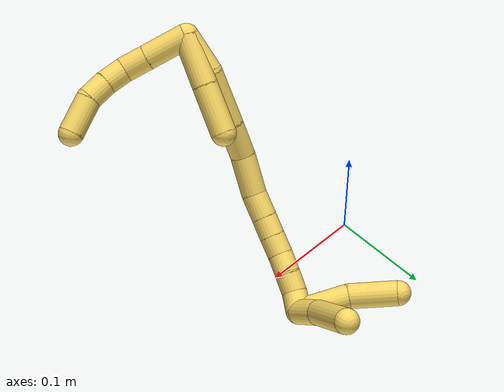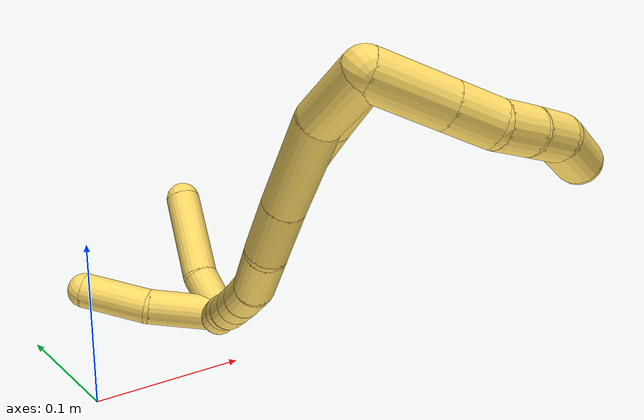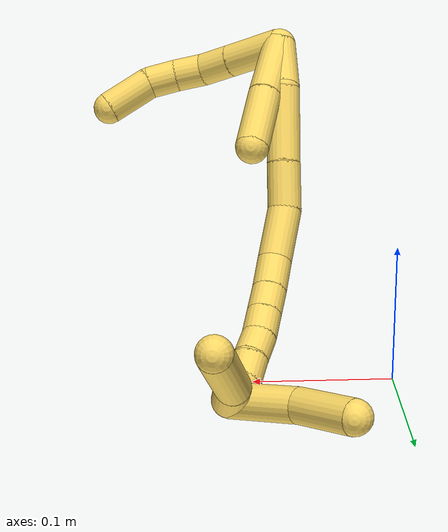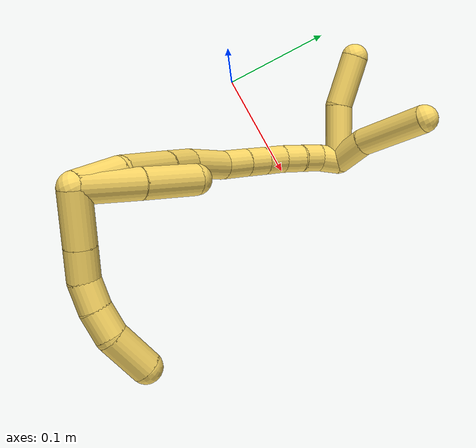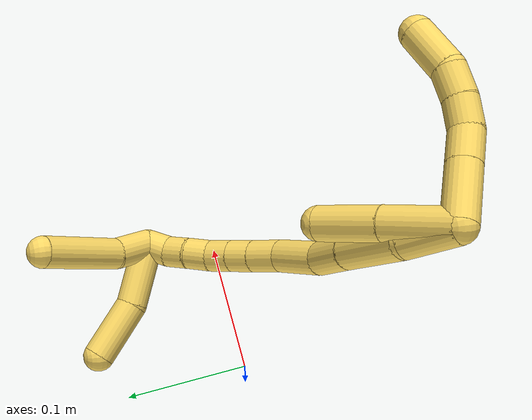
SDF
<sdf version="1.7">
 <world name="default">
  <model name="5">
   <static>0</static>
   <link name="5">
    <collision name="collision-cylinder-e_1_2_8">
     <pose>0.016194 -0.011449 -0.008226 2.19383 0.854482 1.452</pose>
     <geometry><cylinder><radius>0.0125</radius><length>0.04294</length></cylinder></geometry>
     <surface>
      <friction><ode><mu>1.16</mu><mu2>1.16</mu2><slip1>0</slip1><slip2>0</slip2></ode></friction>
      <contact><ode><kp>1e+06</kp><kd>1</kd><max_vel>0</max_vel><min_depth>0.001</min_depth></ode></contact>
     </surface>
    </collision>
    <visual name="visual-cylinder-e_1_2_8">
     <pose>0.016194 -0.011449 -0.008226 2.19383 0.854482 1.452</pose>
     <geometry><cylinder><radius>0.0125</radius><length>0.04294</length></cylinder></geometry>
     <material><ambient>1 0.858824 0.4 1</ambient></material>
    </visual>
    <collision name="collision-cylinder-e_2_8_9">
     <pose>0.041809 -0.029557 -0.021241 2.19423 0.854442 1.45244</pose>
     <geometry><cylinder><radius>0.0125</radius><length>0.024984</length></cylinder></geometry>
     <surface>
      <friction><ode><mu>1.16</mu><mu2>1.16</mu2><slip1>0</slip1><slip2>0</slip2></ode></friction>
      <contact><ode><kp>1e+06</kp><kd>1</kd><max_vel>0</max_vel><min_depth>0.001</min_depth></ode></contact>
     </surface>
    </collision>
    <visual name="visual-cylinder-e_2_8_9">
     <pose>0.041809 -0.029557 -0.021241 2.19423 0.854442 1.45244</pose>
     <geometry><cylinder><radius>0.0125</radius><length>0.024984</length></cylinder></geometry>
     <material><ambient>1 0.858824 0.4 1</ambient></material>
    </visual>
    <collision name="collision-cylinder-e_3_9_10">
     <pose>0.05988 -0.043163 -0.026928 1.69938 0.890167 0.994368</pose>
     <geometry><cylinder><radius>0.0125</radius><length>0.022259</length></cylinder></geometry>
     <surface>
      <friction><ode><mu>1.16</mu><mu2>1.16</mu2><slip1>0</slip1><slip2>0</slip2></ode></friction>
      <contact><ode><kp>1e+06</kp><kd>1</kd><max_vel>0</max_vel><min_depth>0.001</min_depth></ode></contact>
     </surface>
    </collision>
    <visual name="visual-cylinder-e_3_9_10">
     <pose>0.05988 -0.043163 -0.026928 1.69938 0.890167 0.994368</pose>
     <geometry><cylinder><radius>0.0125</radius><length>0.022259</length></cylinder></geometry>
     <material><ambient>1 0.858824 0.4 1</ambient></material>
    </visual>
    <collision name="collision-cylinder-e_4_10_11">
     <pose>0.077807 -0.056573 -0.027059 1.45268 0.958946 0.86539</pose>
     <geometry><cylinder><radius>0.0125</radius><length>0.022665</length></cylinder></geometry>
     <surface>
      <friction><ode><mu>1.16</mu><mu2>1.16</mu2><slip1>0</slip1><slip2>0</slip2></ode></friction>
      <contact><ode><kp>1e+06</kp><kd>1</kd><max_vel>0</max_vel><min_depth>0.001</min_depth></ode></contact>
     </surface>
    </collision>
    <visual name="visual-cylinder-e_4_10_11">
     <pose>0.077807 -0.056573 -0.027059 1.45268 0.958946 0.86539</pose>
     <geometry><cylinder><radius>0.0125</radius><length>0.022665</length></cylinder></geometry>
     <material><ambient>1 0.858824 0.4 1</ambient></material>
    </visual>
    <collision name="collision-cylinder-e_5_11_6">
     <pose>0.104587 -0.06818 -0.0228 0.974312 1.22951 0.7158</pose>
     <geometry><cylinder><radius>0.0125</radius><length>0.037151</length></cylinder></geometry>
     <surface>
      <friction><ode><mu>1.16</mu><mu2>1.16</mu2><slip1>0</slip1><slip2>0</slip2></ode></friction>
      <contact><ode><kp>1e+06</kp><kd>1</kd><max_vel>0</max_vel><min_depth>0.001</min_depth></ode></contact>
     </surface>
    </collision>
    <visual name="visual-cylinder-e_5_11_6">
     <pose>0.104587 -0.06818 -0.0228 0.974312 1.22951 0.7158</pose>
     <geometry><cylinder><radius>0.0125</radius><length>0.037151</length></cylinder></geometry>
     <material><ambient>1 0.858824 0.4 1</ambient></material>
    </visual>
    <collision name="collision-cylinder-e_1_2_12">
     <pose>0.018429 0.0096 0.015051 -0.567755 0.801301 -0.245907</pose>
     <geometry><cylinder><radius>0.0125</radius><length>0.051315</length></cylinder></geometry>
     <surface>
      <friction><ode><mu>1.16</mu><mu2>1.16</mu2><slip1>0</slip1><slip2>0</slip2></ode></friction>
      <contact><ode><kp>1e+06</kp><kd>1</kd><max_vel>0</max_vel><min_depth>0.001</min_depth></ode></contact>
     </surface>
    </collision>
    <visual name="visual-cylinder-e_1_2_12">
     <pose>0.018429 0.0096 0.015051 -0.567755 0.801301 -0.245907</pose>
     <geometry><cylinder><radius>0.0125</radius><length>0.051315</length></cylinder></geometry>
     <material><ambient>1 0.858824 0.4 1</ambient></material>
    </visual>
    <collision name="collision-cylinder-e_2_12_5">
     <pose>0.054515 0.02923 0.043524 -0.641784 0.811564 -0.28368</pose>
     <geometry><cylinder><radius>0.0125</radius><length>0.048685</length></cylinder></geometry>
     <surface>
      <friction><ode><mu>1.16</mu><mu2>1.16</mu2><slip1>0</slip1><slip2>0</slip2></ode></friction>
      <contact><ode><kp>1e+06</kp><kd>1</kd><max_vel>0</max_vel><min_depth>0.001</min_depth></ode></contact>
     </surface>
    </collision>
    <visual name="visual-cylinder-e_2_12_5">
     <pose>0.054515 0.02923 0.043524 -0.641784 0.811564 -0.28368</pose>
     <geometry><cylinder><radius>0.0125</radius><length>0.048685</length></cylinder></geometry>
     <material><ambient>1 0.858824 0.4 1</ambient></material>
    </visual>
    <collision name="collision-cylinder-e_1_2_13">
     <pose>0.012182 0.012935 0.010249 -0.900747 0.635878 -0.315607</pose>
     <geometry><cylinder><radius>0.0125</radius><length>0.041024</length></cylinder></geometry>
     <surface>
      <friction><ode><mu>1.16</mu><mu2>1.16</mu2><slip1>0</slip1><slip2>0</slip2></ode></friction>
      <contact><ode><kp>1e+06</kp><kd>1</kd><max_vel>0</max_vel><min_depth>0.001</min_depth></ode></contact>
     </surface>
    </collision>
    <visual name="visual-cylinder-e_1_2_13">
     <pose>0.012182 0.012935 0.010249 -0.900747 0.635878 -0.315607</pose>
     <geometry><cylinder><radius>0.0125</radius><length>0.041024</length></cylinder></geometry>
     <material><ambient>1 0.858824 0.4 1</ambient></material>
    </visual>
    <collision name="collision-cylinder-e_2_13_14">
     <pose>0.045607 0.044458 0.026685 -1.24946 0.825834 -0.611968</pose>
     <geometry><cylinder><radius>0.0125</radius><length>0.057796</length></cylinder></geometry>
     <surface>
      <friction><ode><mu>1.16</mu><mu2>1.16</mu2><slip1>0</slip1><slip2>0</slip2></ode></friction>
      <contact><ode><kp>1e+06</kp><kd>1</kd><max_vel>0</max_vel><min_depth>0.001</min_depth></ode></contact>
     </surface>
    </collision>
    <visual name="visual-cylinder-e_2_13_14">
     <pose>0.045607 0.044458 0.026685 -1.24946 0.825834 -0.611968</pose>
     <geometry><cylinder><radius>0.0125</radius><length>0.057796</length></cylinder></geometry>
     <material><ambient>1 0.858824 0.4 1</ambient></material>
    </visual>
    <collision name="collision-cylinder-e_3_14_15">
     <pose>0.079763 0.074596 0.035756 -1.32615 0.826047 -0.659559</pose>
     <geometry><cylinder><radius>0.0125</radius><length>0.035125</length></cylinder></geometry>
     <surface>
      <friction><ode><mu>1.16</mu><mu2>1.16</mu2><slip1>0</slip1><slip2>0</slip2></ode></friction>
      <contact><ode><kp>1e+06</kp><kd>1</kd><max_vel>0</max_vel><min_depth>0.001</min_depth></ode></contact>
     </surface>
    </collision>
    <visual name="visual-cylinder-e_3_14_15">
     <pose>0.079763 0.074596 0.035756 -1.32615 0.826047 -0.659559</pose>
     <geometry><cylinder><radius>0.0125</radius><length>0.035125</length></cylinder></geometry>
     <material><ambient>1 0.858824 0.4 1</ambient></material>
    </visual>
    <collision name="collision-cylinder-e_4_15_16">
     <pose>0.108924 0.095602 0.046247 -0.893307 0.92922 -0.471173</pose>
     <geometry><cylinder><radius>0.0125</radius><length>0.04056</length></cylinder></geometry>
     <surface>
      <friction><ode><mu>1.16</mu><mu2>1.16</mu2><slip1>0</slip1><slip2>0</slip2></ode></friction>
      <contact><ode><kp>1e+06</kp><kd>1</kd><max_vel>0</max_vel><min_depth>0.001</min_depth></ode></contact>
     </surface>
    </collision>
    <visual name="visual-cylinder-e_4_15_16">
     <pose>0.108924 0.095602 0.046247 -0.893307 0.92922 -0.471173</pose>
     <geometry><cylinder><radius>0.0125</radius><length>0.04056</length></cylinder></geometry>
     <material><ambient>1 0.858824 0.4 1</ambient></material>
    </visual>
    <collision name="collision-cylinder-e_5_16_17">
     <pose>0.134061 0.110589 0.061008 -0.658158 0.776857 -0.277695</pose>
     <geometry><cylinder><radius>0.0125</radius><length>0.025361</length></cylinder></geometry>
     <surface>
      <friction><ode><mu>1.16</mu><mu2>1.16</mu2><slip1>0</slip1><slip2>0</slip2></ode></friction>
      <contact><ode><kp>1e+06</kp><kd>1</kd><max_vel>0</max_vel><min_depth>0.001</min_depth></ode></contact>
     </surface>
    </collision>
    <visual name="visual-cylinder-e_5_16_17">
     <pose>0.134061 0.110589 0.061008 -0.658158 0.776857 -0.277695</pose>
     <geometry><cylinder><radius>0.0125</radius><length>0.025361</length></cylinder></geometry>
     <material><ambient>1 0.858824 0.4 1</ambient></material>
    </visual>
    <collision name="collision-cylinder-e_6_17_18">
     <pose>0.149917 0.12007 0.074254 -0.57526 0.764792 -0.236852</pose>
     <geometry><cylinder><radius>0.0125</radius><length>0.020124</length></cylinder></geometry>
     <surface>
      <friction><ode><mu>1.16</mu><mu2>1.16</mu2><slip1>0</slip1><slip2>0</slip2></ode></friction>
      <contact><ode><kp>1e+06</kp><kd>1</kd><max_vel>0</max_vel><min_depth>0.001</min_depth></ode></contact>
     </surface>
    </collision>
    <visual name="visual-cylinder-e_6_17_18">
     <pose>0.149917 0.12007 0.074254 -0.57526 0.764792 -0.236852</pose>
     <geometry><cylinder><radius>0.0125</radius><length>0.020124</length></cylinder></geometry>
     <material><ambient>1 0.858824 0.4 1</ambient></material>
    </visual>
    <collision name="collision-cylinder-e_7_18_19">
     <pose>0.163701 0.12798 0.086503 -0.571594 0.749786 -0.230232</pose>
     <geometry><cylinder><radius>0.0125</radius><length>0.020007</length></cylinder></geometry>
     <surface>
      <friction><ode><mu>1.16</mu><mu2>1.16</mu2><slip1>0</slip1><slip2>0</slip2></ode></friction>
      <contact><ode><kp>1e+06</kp><kd>1</kd><max_vel>0</max_vel><min_depth>0.001</min_depth></ode></contact>
     </surface>
    </collision>
    <visual name="visual-cylinder-e_7_18_19">
     <pose>0.163701 0.12798 0.086503 -0.571594 0.749786 -0.230232</pose>
     <geometry><cylinder><radius>0.0125</radius><length>0.020007</length></cylinder></geometry>
     <material><ambient>1 0.858824 0.4 1</ambient></material>
    </visual>
    <collision name="collision-cylinder-e_8_19_20">
     <pose>0.177198 0.134483 0.099656 -0.348474 0.731301 -0.134583</pose>
     <geometry><cylinder><radius>0.0125</radius><length>0.020002</length></cylinder></geometry>
     <surface>
      <friction><ode><mu>1.16</mu><mu2>1.16</mu2><slip1>0</slip1><slip2>0</slip2></ode></friction>
      <contact><ode><kp>1e+06</kp><kd>1</kd><max_vel>0</max_vel><min_depth>0.001</min_depth></ode></contact>
     </surface>
    </collision>
    <visual name="visual-cylinder-e_8_19_20">
     <pose>0.177198 0.134483 0.099656 -0.348474 0.731301 -0.134583</pose>
     <geometry><cylinder><radius>0.0125</radius><length>0.020002</length></cylinder></geometry>
     <material><ambient>1 0.858824 0.4 1</ambient></material>
    </visual>
    <collision name="collision-cylinder-e_9_20_21">
     <pose>0.191037 0.140376 0.112776 -0.500847 0.798063 -0.214881</pose>
     <geometry><cylinder><radius>0.0125</radius><length>0.02</length></cylinder></geometry>
     <surface>
      <friction><ode><mu>1.16</mu><mu2>1.16</mu2><slip1>0</slip1><slip2>0</slip2></ode></friction>
      <contact><ode><kp>1e+06</kp><kd>1</kd><max_vel>0</max_vel><min_depth>0.001</min_depth></ode></contact>
     </surface>
    </collision>
    <visual name="visual-cylinder-e_9_20_21">
     <pose>0.191037 0.140376 0.112776 -0.500847 0.798063 -0.214881</pose>
     <geometry><cylinder><radius>0.0125</radius><length>0.02</length></cylinder></geometry>
     <material><ambient>1 0.858824 0.4 1</ambient></material>
    </visual>
    <collision name="collision-cylinder-e_10_21_1">
     <pose>0.205051 0.143964 0.126177 -0.032427 0.755252 -0.012864</pose>
     <geometry><cylinder><radius>0.0125</radius><length>0.02</length></cylinder></geometry>
     <surface>
      <friction><ode><mu>1.16</mu><mu2>1.16</mu2><slip1>0</slip1><slip2>0</slip2></ode></friction>
      <contact><ode><kp>1e+06</kp><kd>1</kd><max_vel>0</max_vel><min_depth>0.001</min_depth></ode></contact>
     </surface>
    </collision>
    <visual name="visual-cylinder-e_10_21_1">
     <pose>0.205051 0.143964 0.126177 -0.032427 0.755252 -0.012864</pose>
     <geometry><cylinder><radius>0.0125</radius><length>0.02</length></cylinder></geometry>
     <material><ambient>1 0.858824 0.4 1</ambient></material>
    </visual>
    <collision name="collision-cylinder-e_1_1_22">
     <pose>0.196672 0.162463 0.14344 -1.07041 -0.631836 0.38287</pose>
     <geometry><cylinder><radius>0.0125</radius><length>0.051587</length></cylinder></geometry>
     <surface>
      <friction><ode><mu>1.16</mu><mu2>1.16</mu2><slip1>0</slip1><slip2>0</slip2></ode></friction>
      <contact><ode><kp>1e+06</kp><kd>1</kd><max_vel>0</max_vel><min_depth>0.001</min_depth></ode></contact>
     </surface>
    </collision>
    <visual name="visual-cylinder-e_1_1_22">
     <pose>0.196672 0.162463 0.14344 -1.07041 -0.631836 0.38287</pose>
     <geometry><cylinder><radius>0.0125</radius><length>0.051587</length></cylinder></geometry>
     <material><ambient>1 0.858824 0.4 1</ambient></material>
    </visual>
    <collision name="collision-cylinder-e_2_22_4">
     <pose>0.170678 0.195809 0.169003 -0.769296 -0.46061 0.189262</pose>
     <geometry><cylinder><radius>0.0125</radius><length>0.048413</length></cylinder></geometry>
     <surface>
      <friction><ode><mu>1.16</mu><mu2>1.16</mu2><slip1>0</slip1><slip2>0</slip2></ode></friction>
      <contact><ode><kp>1e+06</kp><kd>1</kd><max_vel>0</max_vel><min_depth>0.001</min_depth></ode></contact>
     </surface>
    </collision>
    <visual name="visual-cylinder-e_2_22_4">
     <pose>0.170678 0.195809 0.169003 -0.769296 -0.46061 0.189262</pose>
     <geometry><cylinder><radius>0.0125</radius><length>0.048413</length></cylinder></geometry>
     <material><ambient>1 0.858824 0.4 1</ambient></material>
    </visual>
    <collision name="collision-cylinder-e_1_1_23">
     <pose>0.205509 0.142175 0.148505 0.133769 -0.398703 -0.027065</pose>
     <geometry><cylinder><radius>0.0125</radius><length>0.032957</length></cylinder></geometry>
     <surface>
      <friction><ode><mu>1.16</mu><mu2>1.16</mu2><slip1>0</slip1><slip2>0</slip2></ode></friction>
      <contact><ode><kp>1e+06</kp><kd>1</kd><max_vel>0</max_vel><min_depth>0.001</min_depth></ode></contact>
     </surface>
    </collision>
    <visual name="visual-cylinder-e_1_1_23">
     <pose>0.205509 0.142175 0.148505 0.133769 -0.398703 -0.027065</pose>
     <geometry><cylinder><radius>0.0125</radius><length>0.032957</length></cylinder></geometry>
     <material><ambient>1 0.858824 0.4 1</ambient></material>
    </visual>
    <collision name="collision-cylinder-e_2_23_3">
     <pose>0.190529 0.128843 0.193923 0.356424 -0.258926 -0.046892</pose>
     <geometry><cylinder><radius>0.0125</radius><length>0.067043</length></cylinder></geometry>
     <surface>
      <friction><ode><mu>1.16</mu><mu2>1.16</mu2><slip1>0</slip1><slip2>0</slip2></ode></friction>
      <contact><ode><kp>1e+06</kp><kd>1</kd><max_vel>0</max_vel><min_depth>0.001</min_depth></ode></contact>
     </surface>
    </collision>
    <visual name="visual-cylinder-e_2_23_3">
     <pose>0.190529 0.128843 0.193923 0.356424 -0.258926 -0.046892</pose>
     <geometry><cylinder><radius>0.0125</radius><length>0.067043</length></cylinder></geometry>
     <material><ambient>1 0.858824 0.4 1</ambient></material>
    </visual>
    <collision name="collision-sphere-3">
     <pose>0.181946 0.117537 0.22429 0 -0 0</pose>
     <geometry><sphere><radius>0.0125</radius></sphere></geometry>
     <surface>
      <friction><ode><mu>1.16</mu><mu2>1.16</mu2><slip1>0</slip1><slip2>0</slip2></ode></friction>
      <contact><ode><kp>1e+06</kp><kd>1</kd><max_vel>0</max_vel><min_depth>0.001</min_depth></ode></contact>
     </surface>
    </collision>
    <visual name="visual-sphere-3">
     <pose>0.181946 0.117537 0.22429 0 -0 0</pose>
     <geometry><sphere><radius>0.0125</radius></sphere></geometry>
     <material><ambient>1 0.858824 0.4 1</ambient></material>
    </visual>
    <collision name="collision-sphere-23">
     <pose>0.199111 0.14015 0.163555 0 -0 0</pose>
     <geometry><sphere><radius>0.0125</radius></sphere></geometry>
     <surface>
      <friction><ode><mu>1.16</mu><mu2>1.16</mu2><slip1>0</slip1><slip2>0</slip2></ode></friction>
      <contact><ode><kp>1e+06</kp><kd>1</kd><max_vel>0</max_vel><min_depth>0.001</min_depth></ode></contact>
     </surface>
    </collision>
    <visual name="visual-sphere-23">
     <pose>0.199111 0.14015 0.163555 0 -0 0</pose>
     <geometry><sphere><radius>0.0125</radius></sphere></geometry>
     <material><ambient>1 0.858824 0.4 1</ambient></material>
    </visual>
    <collision name="collision-sphere-4">
     <pose>0.159918 0.210892 0.184581 0 -0 0</pose>
     <geometry><sphere><radius>0.0125</radius></sphere></geometry>
     <surface>
      <friction><ode><mu>1.16</mu><mu2>1.16</mu2><slip1>0</slip1><slip2>0</slip2></ode></friction>
      <contact><ode><kp>1e+06</kp><kd>1</kd><max_vel>0</max_vel><min_depth>0.001</min_depth></ode></contact>
     </surface>
    </collision>
    <visual name="visual-sphere-4">
     <pose>0.159918 0.210892 0.184581 0 -0 0</pose>
     <geometry><sphere><radius>0.0125</radius></sphere></geometry>
     <material><ambient>1 0.858824 0.4 1</ambient></material>
    </visual>
    <collision name="collision-sphere-22">
     <pose>0.181438 0.180725 0.153426 0 -0 0</pose>
     <geometry><sphere><radius>0.0125</radius></sphere></geometry>
     <surface>
      <friction><ode><mu>1.16</mu><mu2>1.16</mu2><slip1>0</slip1><slip2>0</slip2></ode></friction>
      <contact><ode><kp>1e+06</kp><kd>1</kd><max_vel>0</max_vel><min_depth>0.001</min_depth></ode></contact>
     </surface>
    </collision>
    <visual name="visual-sphere-22">
     <pose>0.181438 0.180725 0.153426 0 -0 0</pose>
     <geometry><sphere><radius>0.0125</radius></sphere></geometry>
     <material><ambient>1 0.858824 0.4 1</ambient></material>
    </visual>
    <collision name="collision-sphere-1">
     <pose>0.211906 0.144201 0.133454 0 -0 0</pose>
     <geometry><sphere><radius>0.0125</radius></sphere></geometry>
     <surface>
      <friction><ode><mu>1.16</mu><mu2>1.16</mu2><slip1>0</slip1><slip2>0</slip2></ode></friction>
      <contact><ode><kp>1e+06</kp><kd>1</kd><max_vel>0</max_vel><min_depth>0.001</min_depth></ode></contact>
     </surface>
    </collision>
    <visual name="visual-sphere-1">
     <pose>0.211906 0.144201 0.133454 0 -0 0</pose>
     <geometry><sphere><radius>0.0125</radius></sphere></geometry>
     <material><ambient>1 0.858824 0.4 1</ambient></material>
    </visual>
    <collision name="collision-sphere-21">
     <pose>0.198197 0.143728 0.1189 0 -0 0</pose>
     <geometry><sphere><radius>0.0125</radius></sphere></geometry>
     <surface>
      <friction><ode><mu>1.16</mu><mu2>1.16</mu2><slip1>0</slip1><slip2>0</slip2></ode></friction>
      <contact><ode><kp>1e+06</kp><kd>1</kd><max_vel>0</max_vel><min_depth>0.001</min_depth></ode></contact>
     </surface>
    </collision>
    <visual name="visual-sphere-21">
     <pose>0.198197 0.143728 0.1189 0 -0 0</pose>
     <geometry><sphere><radius>0.0125</radius></sphere></geometry>
     <material><ambient>1 0.858824 0.4 1</ambient></material>
    </visual>
    <collision name="collision-sphere-6">
     <pose>0.122091 -0.073324 -0.019307 0 -0 0</pose>
     <geometry><sphere><radius>0.0125</radius></sphere></geometry>
     <surface>
      <friction><ode><mu>1.16</mu><mu2>1.16</mu2><slip1>0</slip1><slip2>0</slip2></ode></friction>
      <contact><ode><kp>1e+06</kp><kd>1</kd><max_vel>0</max_vel><min_depth>0.001</min_depth></ode></contact>
     </surface>
    </collision>
    <visual name="visual-sphere-6">
     <pose>0.122091 -0.073324 -0.019307 0 -0 0</pose>
     <geometry><sphere><radius>0.0125</radius></sphere></geometry>
     <material><ambient>1 0.858824 0.4 1</ambient></material>
    </visual>
    <collision name="collision-sphere-11">
     <pose>0.087083 -0.063037 -0.026292 0 -0 0</pose>
     <geometry><sphere><radius>0.0125</radius></sphere></geometry>
     <surface>
      <friction><ode><mu>1.16</mu><mu2>1.16</mu2><slip1>0</slip1><slip2>0</slip2></ode></friction>
      <contact><ode><kp>1e+06</kp><kd>1</kd><max_vel>0</max_vel><min_depth>0.001</min_depth></ode></contact>
     </surface>
    </collision>
    <visual name="visual-sphere-11">
     <pose>0.087083 -0.063037 -0.026292 0 -0 0</pose>
     <geometry><sphere><radius>0.0125</radius></sphere></geometry>
     <material><ambient>1 0.858824 0.4 1</ambient></material>
    </visual>
    <collision name="collision-sphere-10">
     <pose>0.06853 -0.050109 -0.027826 0 -0 0</pose>
     <geometry><sphere><radius>0.0125</radius></sphere></geometry>
     <surface>
      <friction><ode><mu>1.16</mu><mu2>1.16</mu2><slip1>0</slip1><slip2>0</slip2></ode></friction>
      <contact><ode><kp>1e+06</kp><kd>1</kd><max_vel>0</max_vel><min_depth>0.001</min_depth></ode></contact>
     </surface>
    </collision>
    <visual name="visual-sphere-10">
     <pose>0.06853 -0.050109 -0.027826 0 -0 0</pose>
     <geometry><sphere><radius>0.0125</radius></sphere></geometry>
     <material><ambient>1 0.858824 0.4 1</ambient></material>
    </visual>
    <collision name="collision-sphere-9">
     <pose>0.05123 -0.036217 -0.02603 0 -0 0</pose>
     <geometry><sphere><radius>0.0125</radius></sphere></geometry>
     <surface>
      <friction><ode><mu>1.16</mu><mu2>1.16</mu2><slip1>0</slip1><slip2>0</slip2></ode></friction>
      <contact><ode><kp>1e+06</kp><kd>1</kd><max_vel>0</max_vel><min_depth>0.001</min_depth></ode></contact>
     </surface>
    </collision>
    <visual name="visual-sphere-9">
     <pose>0.05123 -0.036217 -0.02603 0 -0 0</pose>
     <geometry><sphere><radius>0.0125</radius></sphere></geometry>
     <material><ambient>1 0.858824 0.4 1</ambient></material>
    </visual>
    <collision name="collision-sphere-2">
     <geometry><sphere><radius>0.0125</radius></sphere></geometry>
     <surface>
      <friction><ode><mu>1.16</mu><mu2>1.16</mu2><slip1>0</slip1><slip2>0</slip2></ode></friction>
      <contact><ode><kp>1e+06</kp><kd>1</kd><max_vel>0</max_vel><min_depth>0.001</min_depth></ode></contact>
     </surface>
    </collision>
    <visual name="visual-sphere-2">
     <geometry><sphere><radius>0.0125</radius></sphere></geometry>
     <material><ambient>1 0.858824 0.4 1</ambient></material>
    </visual>
    <collision name="collision-sphere-19">
     <pose>0.170519 0.131941 0.09266 0 -0 0</pose>
     <geometry><sphere><radius>0.0125</radius></sphere></geometry>
     <surface>
      <friction><ode><mu>1.16</mu><mu2>1.16</mu2><slip1>0</slip1><slip2>0</slip2></ode></friction>
      <contact><ode><kp>1e+06</kp><kd>1</kd><max_vel>0</max_vel><min_depth>0.001</min_depth></ode></contact>
     </surface>
    </collision>
    <visual name="visual-sphere-19">
     <pose>0.170519 0.131941 0.09266 0 -0 0</pose>
     <geometry><sphere><radius>0.0125</radius></sphere></geometry>
     <material><ambient>1 0.858824 0.4 1</ambient></material>
    </visual>
    <collision name="collision-sphere-8">
     <pose>0.032387 -0.022898 -0.016452 0 -0 0</pose>
     <geometry><sphere><radius>0.0125</radius></sphere></geometry>
     <surface>
      <friction><ode><mu>1.16</mu><mu2>1.16</mu2><slip1>0</slip1><slip2>0</slip2></ode></friction>
      <contact><ode><kp>1e+06</kp><kd>1</kd><max_vel>0</max_vel><min_depth>0.001</min_depth></ode></contact>
     </surface>
    </collision>
    <visual name="visual-sphere-8">
     <pose>0.032387 -0.022898 -0.016452 0 -0 0</pose>
     <geometry><sphere><radius>0.0125</radius></sphere></geometry>
     <material><ambient>1 0.858824 0.4 1</ambient></material>
    </visual>
    <collision name="collision-sphere-12">
     <pose>0.036858 0.019199 0.030102 0 -0 0</pose>
     <geometry><sphere><radius>0.0125</radius></sphere></geometry>
     <surface>
      <friction><ode><mu>1.16</mu><mu2>1.16</mu2><slip1>0</slip1><slip2>0</slip2></ode></friction>
      <contact><ode><kp>1e+06</kp><kd>1</kd><max_vel>0</max_vel><min_depth>0.001</min_depth></ode></contact>
     </surface>
    </collision>
    <visual name="visual-sphere-12">
     <pose>0.036858 0.019199 0.030102 0 -0 0</pose>
     <geometry><sphere><radius>0.0125</radius></sphere></geometry>
     <material><ambient>1 0.858824 0.4 1</ambient></material>
    </visual>
    <collision name="collision-sphere-5">
     <pose>0.072172 0.039261 0.056947 0 -0 0</pose>
     <geometry><sphere><radius>0.0125</radius></sphere></geometry>
     <surface>
      <friction><ode><mu>1.16</mu><mu2>1.16</mu2><slip1>0</slip1><slip2>0</slip2></ode></friction>
      <contact><ode><kp>1e+06</kp><kd>1</kd><max_vel>0</max_vel><min_depth>0.001</min_depth></ode></contact>
     </surface>
    </collision>
    <visual name="visual-sphere-5">
     <pose>0.072172 0.039261 0.056947 0 -0 0</pose>
     <geometry><sphere><radius>0.0125</radius></sphere></geometry>
     <material><ambient>1 0.858824 0.4 1</ambient></material>
    </visual>
    <collision name="collision-sphere-13">
     <pose>0.024364 0.02587 0.020498 0 -0 0</pose>
     <geometry><sphere><radius>0.0125</radius></sphere></geometry>
     <surface>
      <friction><ode><mu>1.16</mu><mu2>1.16</mu2><slip1>0</slip1><slip2>0</slip2></ode></friction>
      <contact><ode><kp>1e+06</kp><kd>1</kd><max_vel>0</max_vel><min_depth>0.001</min_depth></ode></contact>
     </surface>
    </collision>
    <visual name="visual-sphere-13">
     <pose>0.024364 0.02587 0.020498 0 -0 0</pose>
     <geometry><sphere><radius>0.0125</radius></sphere></geometry>
     <material><ambient>1 0.858824 0.4 1</ambient></material>
    </visual>
    <collision name="collision-sphere-14">
     <pose>0.06685 0.063047 0.032873 0 -0 0</pose>
     <geometry><sphere><radius>0.0125</radius></sphere></geometry>
     <surface>
      <friction><ode><mu>1.16</mu><mu2>1.16</mu2><slip1>0</slip1><slip2>0</slip2></ode></friction>
      <contact><ode><kp>1e+06</kp><kd>1</kd><max_vel>0</max_vel><min_depth>0.001</min_depth></ode></contact>
     </surface>
    </collision>
    <visual name="visual-sphere-14">
     <pose>0.06685 0.063047 0.032873 0 -0 0</pose>
     <geometry><sphere><radius>0.0125</radius></sphere></geometry>
     <material><ambient>1 0.858824 0.4 1</ambient></material>
    </visual>
    <collision name="collision-sphere-15">
     <pose>0.092677 0.086145 0.038639 0 -0 0</pose>
     <geometry><sphere><radius>0.0125</radius></sphere></geometry>
     <surface>
      <friction><ode><mu>1.16</mu><mu2>1.16</mu2><slip1>0</slip1><slip2>0</slip2></ode></friction>
      <contact><ode><kp>1e+06</kp><kd>1</kd><max_vel>0</max_vel><min_depth>0.001</min_depth></ode></contact>
     </surface>
    </collision>
    <visual name="visual-sphere-15">
     <pose>0.092677 0.086145 0.038639 0 -0 0</pose>
     <geometry><sphere><radius>0.0125</radius></sphere></geometry>
     <material><ambient>1 0.858824 0.4 1</ambient></material>
    </visual>
    <collision name="collision-sphere-16">
     <pose>0.125171 0.105058 0.053855 0 -0 0</pose>
     <geometry><sphere><radius>0.0125</radius></sphere></geometry>
     <surface>
      <friction><ode><mu>1.16</mu><mu2>1.16</mu2><slip1>0</slip1><slip2>0</slip2></ode></friction>
      <contact><ode><kp>1e+06</kp><kd>1</kd><max_vel>0</max_vel><min_depth>0.001</min_depth></ode></contact>
     </surface>
    </collision>
    <visual name="visual-sphere-16">
     <pose>0.125171 0.105058 0.053855 0 -0 0</pose>
     <geometry><sphere><radius>0.0125</radius></sphere></geometry>
     <material><ambient>1 0.858824 0.4 1</ambient></material>
    </visual>
    <collision name="collision-sphere-17">
     <pose>0.14295 0.11612 0.068162 0 -0 0</pose>
     <geometry><sphere><radius>0.0125</radius></sphere></geometry>
     <surface>
      <friction><ode><mu>1.16</mu><mu2>1.16</mu2><slip1>0</slip1><slip2>0</slip2></ode></friction>
      <contact><ode><kp>1e+06</kp><kd>1</kd><max_vel>0</max_vel><min_depth>0.001</min_depth></ode></contact>
     </surface>
    </collision>
    <visual name="visual-sphere-17">
     <pose>0.14295 0.11612 0.068162 0 -0 0</pose>
     <geometry><sphere><radius>0.0125</radius></sphere></geometry>
     <material><ambient>1 0.858824 0.4 1</ambient></material>
    </visual>
    <collision name="collision-sphere-18">
     <pose>0.156884 0.12402 0.080345 0 -0 0</pose>
     <geometry><sphere><radius>0.0125</radius></sphere></geometry>
     <surface>
      <friction><ode><mu>1.16</mu><mu2>1.16</mu2><slip1>0</slip1><slip2>0</slip2></ode></friction>
      <contact><ode><kp>1e+06</kp><kd>1</kd><max_vel>0</max_vel><min_depth>0.001</min_depth></ode></contact>
     </surface>
    </collision>
    <visual name="visual-sphere-18">
     <pose>0.156884 0.12402 0.080345 0 -0 0</pose>
     <geometry><sphere><radius>0.0125</radius></sphere></geometry>
     <material><ambient>1 0.858824 0.4 1</ambient></material>
    </visual>
    <collision name="collision-sphere-20">
     <pose>0.183876 0.137024 0.106653 0 -0 0</pose>
     <geometry><sphere><radius>0.0125</radius></sphere></geometry>
     <surface>
      <friction><ode><mu>1.16</mu><mu2>1.16</mu2><slip1>0</slip1><slip2>0</slip2></ode></friction>
      <contact><ode><kp>1e+06</kp><kd>1</kd><max_vel>0</max_vel><min_depth>0.001</min_depth></ode></contact>
     </surface>
    </collision>
    <visual name="visual-sphere-20">
     <pose>0.183876 0.137024 0.106653 0 -0 0</pose>
     <geometry><sphere><radius>0.0125</radius></sphere></geometry>
     <material><ambient>1 0.858824 0.4 1</ambient></material>
    </visual>
    <inertial>
     <pose>0.109054 0.070467 0.066752 0 -0 0</pose>
     <mass>0.75</mass>
     <inertia>
      <ixx>0.000121</ixx>
      <ixy>0</ixy>
      <ixz>0</ixz>
      <iyy>0.000126</iyy>
      <iyz>0</iyz>
      <izz>-5.5e-05</izz>
     </inertia>
    </inertial>
   </link>
   <pose>0.071705 -0.155097 0.208794 -1.0569 0.831534 0.258789</pose>
  </model>
 </world>
</sdf>
